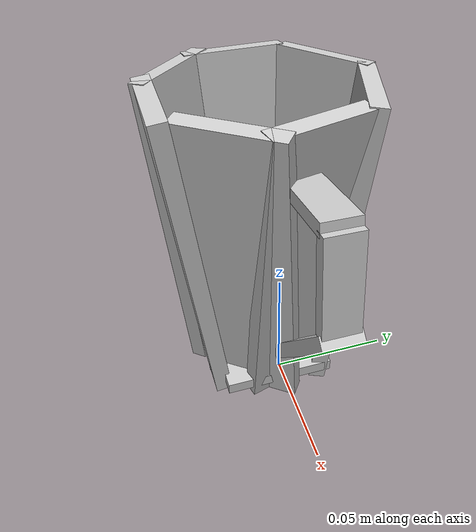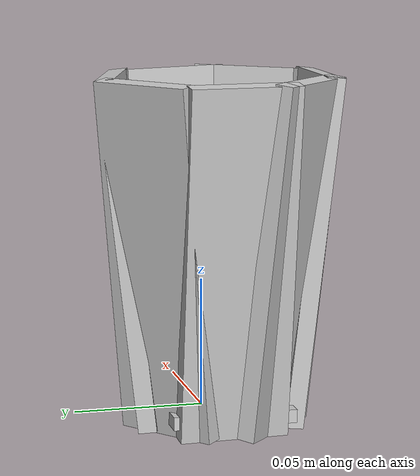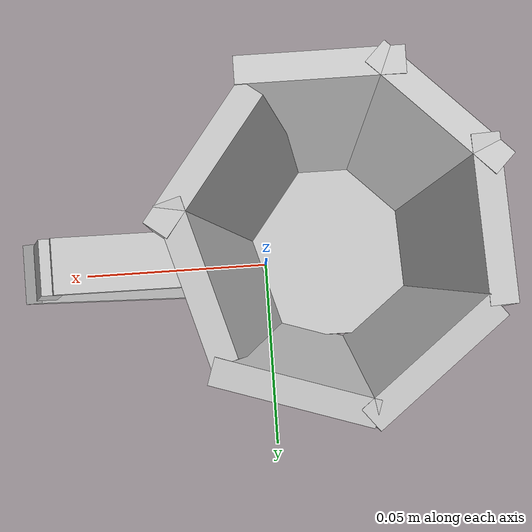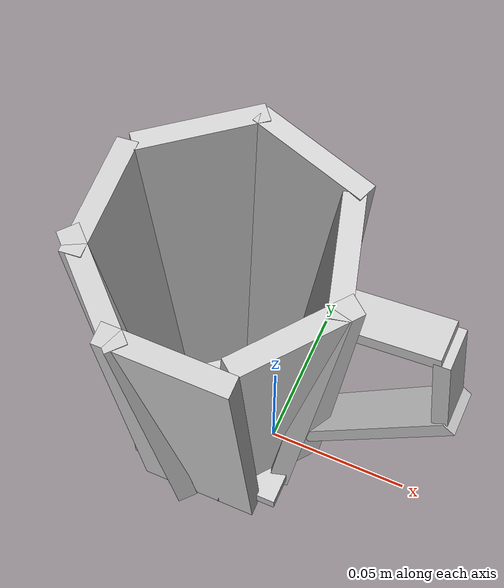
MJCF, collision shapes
<mujoco model="red_coffee_mug">
  <asset>
  <texture file="red_coffee_mug_texture.png" name="tex-red_coffee_mug" type="2d" />
  <material name="red_coffee_mug" reflectance="0.5" texrepeat="1 1" texture="tex-red_coffee_mug" texuniform="false" />
  <mesh file="visual/red_coffee_mug_vis.msh" name="red_coffee_mug_vis" scale="1.0 1.0 1.0" /></asset>
  <worldbody>
    <body>
      <body name="object">
      <geom solimp="0.998 0.998 0.001" solref="0.001 1" density="100" friction="0.95 0.3 0.1" type="mesh" mesh="red_coffee_mug_vis" conaffinity="0" contype="0" group="1" material="red_coffee_mug" /><geom solimp="0.998 0.998 0.001" solref="0.001 1" density="100" friction="0.95 0.3 0.1" type="box" pos="-0.01531 -0.00301 0.00526" quat="0.70711 0.00000 0.70711 0.00000" size="0.00251 0.02354 0.02686" group="0" rgba="0.8 0.8 0.8 0.3" /><geom solimp="0.998 0.998 0.001" solref="0.001 1" density="100" friction="0.95 0.3 0.1" type="box" pos="0.00784 -0.01707 0.06450" quat="0.01829 -0.94542 0.32085 0.05388" size="0.00351 0.02064 0.06637" group="0" rgba="0.8 0.8 0.8 0.3" /><geom solimp="0.998 0.998 0.001" solref="0.001 1" density="100" friction="0.95 0.3 0.1" type="box" pos="-0.01551 -0.03478 0.06450" quat="0.04024 -0.70596 -0.70596 -0.04024" size="0.00351 0.02064 0.06637" group="0" rgba="0.8 0.8 0.8 0.3" /><geom solimp="0.998 0.998 0.001" solref="0.001 1" density="100" friction="0.95 0.3 0.1" type="box" pos="0.01023 0.00559 0.06450" quat="0.98871 -0.00790 0.05635 0.13863" size="0.00351 0.02064 0.06637" group="0" rgba="0.8 0.8 0.8 0.3" /><geom solimp="0.998 0.998 0.001" solref="0.001 1" density="100" friction="0.95 0.3 0.1" type="box" pos="-0.00677 0.02828 0.06450" quat="0.80894 -0.03335 0.04610 0.58513" size="0.00351 0.02064 0.06637" group="0" rgba="0.8 0.8 0.8 0.3" /><geom solimp="0.998 0.998 0.001" solref="0.001 1" density="100" friction="0.95 0.3 0.1" type="box" pos="-0.03366 0.02452 0.06450" quat="0.05122 0.43474 0.89876 -0.02478" size="0.00351 0.02064 0.06637" group="0" rgba="0.8 0.8 0.8 0.3" /><geom solimp="0.998 0.998 0.001" solref="0.001 1" density="100" friction="0.95 0.3 0.1" type="box" pos="-0.04726 -0.00246 0.06450" quat="0.05689 -0.02366 0.99810 0.00135" size="0.00351 0.02064 0.06637" group="0" rgba="0.8 0.8 0.8 0.3" /><geom solimp="0.998 0.998 0.001" solref="0.001 1" density="100" friction="0.95 0.3 0.1" type="box" pos="-0.03828 -0.02489 0.06450" quat="0.38651 0.05247 0.02203 -0.92053" size="0.00351 0.02064 0.06637" group="0" rgba="0.8 0.8 0.8 0.3" /><geom solimp="0.998 0.998 0.001" solref="0.001 1" density="100" friction="0.95 0.3 0.1" type="box" pos="0.03685 0.00109 0.05041" quat="0.93181 -0.00000 0.36295 -0.00000" size="0.00292 0.00757 0.03425" group="0" rgba="0.8 0.8 0.8 0.3" /><geom solimp="0.998 0.998 0.001" solref="0.001 1" density="100" friction="0.95 0.3 0.1" type="box" pos="0.05474 0.00109 0.09435" quat="0.99869 0.00000 -0.05124 0.00000" size="0.00266 0.00692 0.01924" group="0" rgba="0.8 0.8 0.8 0.3" /><geom solimp="0.998 0.998 0.001" solref="0.001 1" density="100" friction="0.95 0.3 0.1" type="box" pos="0.03457 0.00109 0.11162" quat="0.75578 -0.00000 0.65483 -0.00000" size="0.00266 0.00692 0.01822" group="0" rgba="0.8 0.8 0.8 0.3" /></body>
      <site rgba="0 0 0 0" size="0.005" pos="0 0 -0.06" name="bottom_site" />
      <site rgba="0 0 0 0" size="0.005" pos="0 0 0.04" name="top_site" />
      <!-- robosuite placement uses only site pos[0] as XY radius; was 0.025 (too small → overlapping spawns). -->
      <site rgba="0 0 0 0" size="0.005" pos="0.08 0.08 0" name="horizontal_radius_site" />
    </body>
  </worldbody>
</mujoco>
